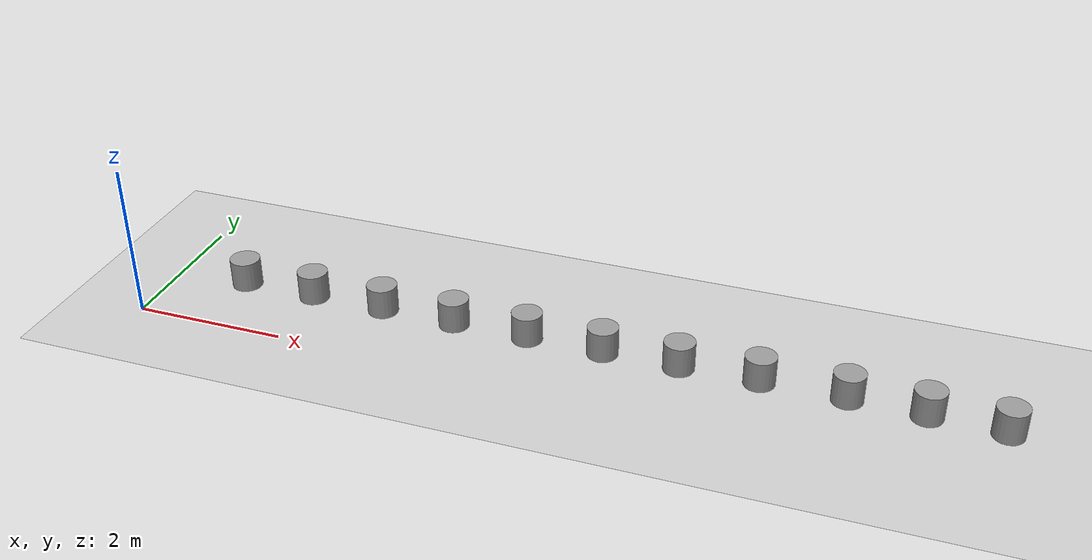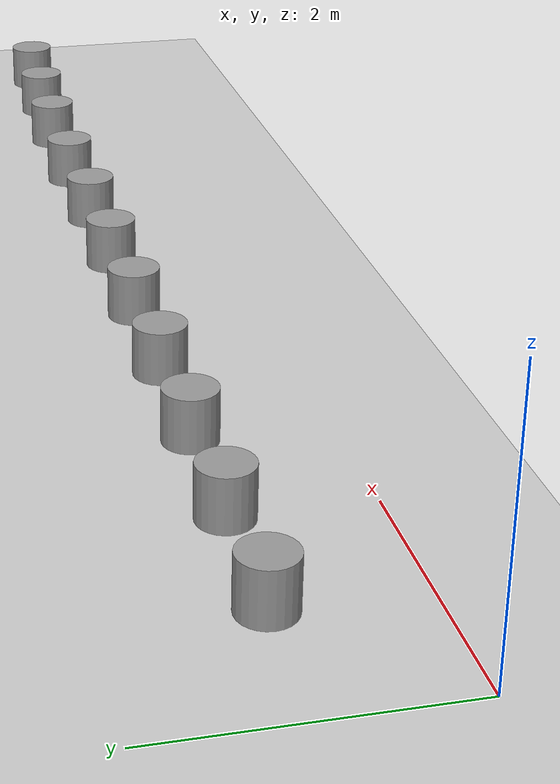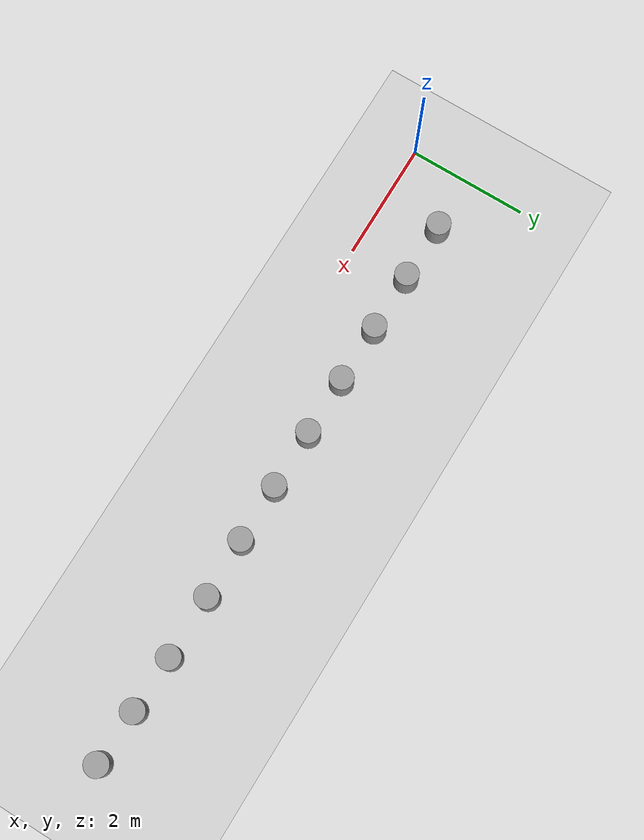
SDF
<sdf version="1.6">
 <world name="default">
  <light name="sun" type="directional">
   <pose>0 0 10 0 -0 0</pose>
   <diffuse>0.8 0.8 0.8 1</diffuse>
   <specular>0.2 0.2 0.2 1</specular>
   <attenuation>
    <range>1000</range>
    <constant>0.9</constant>
    <linear>0.01</linear>
    <quadratic>0.001</quadratic>
   </attenuation>
   <direction>-0.5 0.1 -0.9</direction>
  </light>
  <model name="ground_plane">
   <static>1</static>
   <link name="link">
    <collision name="collision">
     <geometry><plane><normal>0 0 1</normal><size>100 100</size></plane></geometry>
     <surface><friction><ode><mu>100</mu><mu2>50</mu2></ode></friction></surface>
    </collision>
    <visual name="visual">
     <cast_shadows>0</cast_shadows>
     <geometry><plane><normal>0 0 1</normal><size>100 100</size></plane></geometry>
     <material>
      <script><uri>file://media/materials/scripts/gazebo.material</uri><name>Gazebo/Grey</name></script>
     </material>
    </visual>
   </link>
  </model>
  <gravity>0 0 -9.8</gravity>
  <magnetic_field>6e-06 2.3e-05 -4.2e-05</magnetic_field>
  <atmosphere type="adiabatic"/>
  <physics name="default_physics" default="0" type="ode">
   <max_step_size>0.003</max_step_size>
   <real_time_factor>1</real_time_factor>
   <real_time_update_rate>2000</real_time_update_rate>
  </physics>
  <scene><ambient>0.4 0.4 0.4 1</ambient><background>0.7 0.7 0.7 1</background><shadows>1</shadows></scene>
  <audio><device>default</device></audio>
  <spherical_coordinates>
   <surface_model>EARTH_WGS84</surface_model>
   <latitude_deg>0</latitude_deg>
   <longitude_deg>0</longitude_deg>
   <elevation>0</elevation>
   <heading_deg>0</heading_deg>
  </spherical_coordinates>
  <model name="agent3">
   <link name="link_0">
    <inertial>
     <mass>1</mass>
     <inertia><ixx>0</ixx><ixy>0</ixy><ixz>0</ixz><iyy>0</iyy><iyz>0</iyz><izz>0</izz></inertia>
    </inertial>
    <visual name="visual">
     <geometry><cylinder><radius>0.2</radius><length>0.4</length></cylinder></geometry>
     <material>
      <lighting>1</lighting>
      <script><uri>file://media/materials/scripts/gazebo.material</uri><name>Gazebo/Grey</name></script>
     </material>
    </visual>
    <collision name="collision">
     <geometry><cylinder><radius>0.2</radius><length>0.4</length></cylinder></geometry>
     <surface>
      <friction>
       <ode><mu>0</mu><mu2>1</mu2><fdir1>0 0 0</fdir1><slip1>0</slip1><slip2>0</slip2></ode>
       <torsional>
        <coefficient>1</coefficient>
        <patch_radius>0</patch_radius>
        <surface_radius>0</surface_radius>
        <use_patch_radius>1</use_patch_radius>
        <ode><slip>0</slip></ode>
       </torsional>
      </friction>
      <bounce><restitution_coefficient>0</restitution_coefficient><threshold>1e+06</threshold></bounce>
      <contact>
       <collide_without_contact>0</collide_without_contact>
       <collide_without_contact_bitmask>1</collide_without_contact_bitmask>
       <collide_bitmask>1</collide_bitmask>
       <ode>
        <soft_cfm>0</soft_cfm>
        <soft_erp>0.2</soft_erp>
        <kp>1e+13</kp>
        <kd>1</kd>
        <max_vel>0.01</max_vel>
        <min_depth>0</min_depth>
       </ode>
       <bullet>
        <split_impulse>1</split_impulse>
        <split_impulse_penetration_threshold>-0.01</split_impulse_penetration_threshold>
        <soft_cfm>0</soft_cfm>
        <soft_erp>0.2</soft_erp>
        <kp>1e+13</kp>
        <kd>1</kd>
       </bullet>
      </contact>
     </surface>
    </collision>
   </link>
   <static>0</static>
   <plugin name="multi_obs" filename="libmulti_obs.so"/>
   <pose>3 1 0.19999 -0 -0 -0</pose>
  </model>
  <model name="agent2">
   <link name="link_0">
    <inertial>
     <mass>1</mass>
     <inertia><ixx>0</ixx><ixy>0</ixy><ixz>0</ixz><iyy>0</iyy><iyz>0</iyz><izz>0</izz></inertia>
    </inertial>
    <visual name="visual">
     <geometry><cylinder><radius>0.2</radius><length>0.4</length></cylinder></geometry>
     <material>
      <lighting>1</lighting>
      <script><uri>file://media/materials/scripts/gazebo.material</uri><name>Gazebo/Grey</name></script>
     </material>
    </visual>
    <collision name="collision">
     <geometry><cylinder><radius>0.2</radius><length>0.4</length></cylinder></geometry>
     <surface>
      <friction>
       <ode><mu>0</mu><mu2>1</mu2><fdir1>0 0 0</fdir1><slip1>0</slip1><slip2>0</slip2></ode>
       <torsional>
        <coefficient>1</coefficient>
        <patch_radius>0</patch_radius>
        <surface_radius>0</surface_radius>
        <use_patch_radius>1</use_patch_radius>
        <ode><slip>0</slip></ode>
       </torsional>
      </friction>
      <bounce><restitution_coefficient>0</restitution_coefficient><threshold>1e+06</threshold></bounce>
      <contact>
       <collide_without_contact>0</collide_without_contact>
       <collide_without_contact_bitmask>1</collide_without_contact_bitmask>
       <collide_bitmask>1</collide_bitmask>
       <ode>
        <soft_cfm>0</soft_cfm>
        <soft_erp>0.2</soft_erp>
        <kp>1e+13</kp>
        <kd>1</kd>
        <max_vel>0.01</max_vel>
        <min_depth>0</min_depth>
       </ode>
       <bullet>
        <split_impulse>1</split_impulse>
        <split_impulse_penetration_threshold>-0.01</split_impulse_penetration_threshold>
        <soft_cfm>0</soft_cfm>
        <soft_erp>0.2</soft_erp>
        <kp>1e+13</kp>
        <kd>1</kd>
       </bullet>
      </contact>
     </surface>
    </collision>
   </link>
   <static>0</static>
   <plugin name="multi_obs" filename="libmulti_obs.so"/>
   <pose>2 1 0.19999 -0 -0 -0</pose>
  </model>
  <model name="agent4">
   <link name="link_0">
    <inertial>
     <mass>1</mass>
     <inertia><ixx>0</ixx><ixy>0</ixy><ixz>0</ixz><iyy>0</iyy><iyz>0</iyz><izz>0</izz></inertia>
    </inertial>
    <visual name="visual">
     <geometry><cylinder><radius>0.2</radius><length>0.4</length></cylinder></geometry>
     <material>
      <lighting>1</lighting>
      <script><uri>file://media/materials/scripts/gazebo.material</uri><name>Gazebo/Grey</name></script>
     </material>
    </visual>
    <collision name="collision">
     <geometry><cylinder><radius>0.2</radius><length>0.4</length></cylinder></geometry>
     <surface>
      <friction>
       <ode><mu>0</mu><mu2>1</mu2><fdir1>0 0 0</fdir1><slip1>0</slip1><slip2>0</slip2></ode>
       <torsional>
        <coefficient>1</coefficient>
        <patch_radius>0</patch_radius>
        <surface_radius>0</surface_radius>
        <use_patch_radius>1</use_patch_radius>
        <ode><slip>0</slip></ode>
       </torsional>
      </friction>
      <bounce><restitution_coefficient>0</restitution_coefficient><threshold>1e+06</threshold></bounce>
      <contact>
       <collide_without_contact>0</collide_without_contact>
       <collide_without_contact_bitmask>1</collide_without_contact_bitmask>
       <collide_bitmask>1</collide_bitmask>
       <ode>
        <soft_cfm>0</soft_cfm>
        <soft_erp>0.2</soft_erp>
        <kp>1e+13</kp>
        <kd>1</kd>
        <max_vel>0.01</max_vel>
        <min_depth>0</min_depth>
       </ode>
       <bullet>
        <split_impulse>1</split_impulse>
        <split_impulse_penetration_threshold>-0.01</split_impulse_penetration_threshold>
        <soft_cfm>0</soft_cfm>
        <soft_erp>0.2</soft_erp>
        <kp>1e+13</kp>
        <kd>1</kd>
       </bullet>
      </contact>
     </surface>
    </collision>
   </link>
   <static>0</static>
   <plugin name="multi_obs" filename="libmulti_obs.so"/>
   <pose>4 1 0.19999 -0 -0 -0</pose>
  </model>
  <model name="agent1">
   <link name="link_0">
    <inertial>
     <mass>1</mass>
     <inertia><ixx>0</ixx><ixy>0</ixy><ixz>0</ixz><iyy>0</iyy><iyz>0</iyz><izz>0</izz></inertia>
    </inertial>
    <visual name="visual">
     <geometry><cylinder><radius>0.2</radius><length>0.4</length></cylinder></geometry>
     <material>
      <lighting>1</lighting>
      <script><uri>file://media/materials/scripts/gazebo.material</uri><name>Gazebo/Grey</name></script>
     </material>
    </visual>
    <collision name="collision">
     <geometry><cylinder><radius>0.2</radius><length>0.4</length></cylinder></geometry>
     <surface>
      <friction>
       <ode><mu>0</mu><mu2>1</mu2><fdir1>0 0 0</fdir1><slip1>0</slip1><slip2>0</slip2></ode>
       <torsional>
        <coefficient>1</coefficient>
        <patch_radius>0</patch_radius>
        <surface_radius>0</surface_radius>
        <use_patch_radius>1</use_patch_radius>
        <ode><slip>0</slip></ode>
       </torsional>
      </friction>
      <bounce><restitution_coefficient>0</restitution_coefficient><threshold>1e+06</threshold></bounce>
      <contact>
       <collide_without_contact>0</collide_without_contact>
       <collide_without_contact_bitmask>1</collide_without_contact_bitmask>
       <collide_bitmask>1</collide_bitmask>
       <ode>
        <soft_cfm>0</soft_cfm>
        <soft_erp>0.2</soft_erp>
        <kp>1e+13</kp>
        <kd>1</kd>
        <max_vel>0.01</max_vel>
        <min_depth>0</min_depth>
       </ode>
       <bullet>
        <split_impulse>1</split_impulse>
        <split_impulse_penetration_threshold>-0.01</split_impulse_penetration_threshold>
        <soft_cfm>0</soft_cfm>
        <soft_erp>0.2</soft_erp>
        <kp>1e+13</kp>
        <kd>1</kd>
       </bullet>
      </contact>
     </surface>
    </collision>
   </link>
   <static>0</static>
   <plugin name="multi_obs" filename="libmulti_obs.so"/>
   <pose>1 1 0.19999 -0 -0 -0</pose>
  </model>
  <model name="agent5">
   <link name="link_0">
    <inertial>
     <mass>1</mass>
     <inertia><ixx>0</ixx><ixy>0</ixy><ixz>0</ixz><iyy>0</iyy><iyz>0</iyz><izz>0</izz></inertia>
    </inertial>
    <visual name="visual">
     <geometry><cylinder><radius>0.2</radius><length>0.4</length></cylinder></geometry>
     <material>
      <lighting>1</lighting>
      <script><uri>file://media/materials/scripts/gazebo.material</uri><name>Gazebo/Grey</name></script>
     </material>
    </visual>
    <collision name="collision">
     <geometry><cylinder><radius>0.2</radius><length>0.4</length></cylinder></geometry>
     <surface>
      <friction>
       <ode><mu>0</mu><mu2>1</mu2><fdir1>0 0 0</fdir1><slip1>0</slip1><slip2>0</slip2></ode>
       <torsional>
        <coefficient>1</coefficient>
        <patch_radius>0</patch_radius>
        <surface_radius>0</surface_radius>
        <use_patch_radius>1</use_patch_radius>
        <ode><slip>0</slip></ode>
       </torsional>
      </friction>
      <bounce><restitution_coefficient>0</restitution_coefficient><threshold>1e+06</threshold></bounce>
      <contact>
       <collide_without_contact>0</collide_without_contact>
       <collide_without_contact_bitmask>1</collide_without_contact_bitmask>
       <collide_bitmask>1</collide_bitmask>
       <ode>
        <soft_cfm>0</soft_cfm>
        <soft_erp>0.2</soft_erp>
        <kp>1e+13</kp>
        <kd>1</kd>
        <max_vel>0.01</max_vel>
        <min_depth>0</min_depth>
       </ode>
       <bullet>
        <split_impulse>1</split_impulse>
        <split_impulse_penetration_threshold>-0.01</split_impulse_penetration_threshold>
        <soft_cfm>0</soft_cfm>
        <soft_erp>0.2</soft_erp>
        <kp>1e+13</kp>
        <kd>1</kd>
       </bullet>
      </contact>
     </surface>
    </collision>
   </link>
   <static>0</static>
   <plugin name="multi_obs" filename="libmulti_obs.so"/>
   <pose>5 1 0.19999 -0 -0 -0</pose>
  </model>
  <model name="agent6">
   <link name="link_0">
    <inertial>
     <mass>1</mass>
     <inertia><ixx>0</ixx><ixy>0</ixy><ixz>0</ixz><iyy>0</iyy><iyz>0</iyz><izz>0</izz></inertia>
    </inertial>
    <visual name="visual">
     <geometry><cylinder><radius>0.2</radius><length>0.4</length></cylinder></geometry>
     <material>
      <lighting>1</lighting>
      <script><uri>file://media/materials/scripts/gazebo.material</uri><name>Gazebo/Grey</name></script>
     </material>
    </visual>
    <collision name="collision">
     <geometry><cylinder><radius>0.2</radius><length>0.4</length></cylinder></geometry>
     <surface>
      <friction>
       <ode><mu>0</mu><mu2>1</mu2><fdir1>0 0 0</fdir1><slip1>0</slip1><slip2>0</slip2></ode>
       <torsional>
        <coefficient>1</coefficient>
        <patch_radius>0</patch_radius>
        <surface_radius>0</surface_radius>
        <use_patch_radius>1</use_patch_radius>
        <ode><slip>0</slip></ode>
       </torsional>
      </friction>
      <bounce><restitution_coefficient>0</restitution_coefficient><threshold>1e+06</threshold></bounce>
      <contact>
       <collide_without_contact>0</collide_without_contact>
       <collide_without_contact_bitmask>1</collide_without_contact_bitmask>
       <collide_bitmask>1</collide_bitmask>
       <ode>
        <soft_cfm>0</soft_cfm>
        <soft_erp>0.2</soft_erp>
        <kp>1e+13</kp>
        <kd>1</kd>
        <max_vel>0.01</max_vel>
        <min_depth>0</min_depth>
       </ode>
       <bullet>
        <split_impulse>1</split_impulse>
        <split_impulse_penetration_threshold>-0.01</split_impulse_penetration_threshold>
        <soft_cfm>0</soft_cfm>
        <soft_erp>0.2</soft_erp>
        <kp>1e+13</kp>
        <kd>1</kd>
       </bullet>
      </contact>
     </surface>
    </collision>
   </link>
   <static>0</static>
   <plugin name="multi_obs" filename="libmulti_obs.so"/>
   <pose>6 1 0.19999 -0 -0 -0</pose>
  </model>
  <model name="agent7">
   <link name="link_0">
    <inertial>
     <mass>1</mass>
     <inertia><ixx>0</ixx><ixy>0</ixy><ixz>0</ixz><iyy>0</iyy><iyz>0</iyz><izz>0</izz></inertia>
    </inertial>
    <visual name="visual">
     <geometry><cylinder><radius>0.2</radius><length>0.4</length></cylinder></geometry>
     <material>
      <lighting>1</lighting>
      <script><uri>file://media/materials/scripts/gazebo.material</uri><name>Gazebo/Grey</name></script>
     </material>
    </visual>
    <collision name="collision">
     <geometry><cylinder><radius>0.2</radius><length>0.4</length></cylinder></geometry>
     <surface>
      <friction>
       <ode><mu>0</mu><mu2>1</mu2><fdir1>0 0 0</fdir1><slip1>0</slip1><slip2>0</slip2></ode>
       <torsional>
        <coefficient>1</coefficient>
        <patch_radius>0</patch_radius>
        <surface_radius>0</surface_radius>
        <use_patch_radius>1</use_patch_radius>
        <ode><slip>0</slip></ode>
       </torsional>
      </friction>
      <bounce><restitution_coefficient>0</restitution_coefficient><threshold>1e+06</threshold></bounce>
      <contact>
       <collide_without_contact>0</collide_without_contact>
       <collide_without_contact_bitmask>1</collide_without_contact_bitmask>
       <collide_bitmask>1</collide_bitmask>
       <ode>
        <soft_cfm>0</soft_cfm>
        <soft_erp>0.2</soft_erp>
        <kp>1e+13</kp>
        <kd>1</kd>
        <max_vel>0.01</max_vel>
        <min_depth>0</min_depth>
       </ode>
       <bullet>
        <split_impulse>1</split_impulse>
        <split_impulse_penetration_threshold>-0.01</split_impulse_penetration_threshold>
        <soft_cfm>0</soft_cfm>
        <soft_erp>0.2</soft_erp>
        <kp>1e+13</kp>
        <kd>1</kd>
       </bullet>
      </contact>
     </surface>
    </collision>
   </link>
   <static>0</static>
   <plugin name="multi_obs" filename="libmulti_obs.so"/>
   <pose>6.97929 1.00485 0.19999 0 -0 0</pose>
  </model>
  <model name="agent8">
   <link name="link_0">
    <inertial>
     <mass>1</mass>
     <inertia><ixx>0</ixx><ixy>0</ixy><ixz>0</ixz><iyy>0</iyy><iyz>0</iyz><izz>0</izz></inertia>
    </inertial>
    <visual name="visual">
     <geometry><cylinder><radius>0.2</radius><length>0.4</length></cylinder></geometry>
     <material>
      <lighting>1</lighting>
      <script><uri>file://media/materials/scripts/gazebo.material</uri><name>Gazebo/Grey</name></script>
     </material>
    </visual>
    <collision name="collision">
     <geometry><cylinder><radius>0.2</radius><length>0.4</length></cylinder></geometry>
     <surface>
      <friction>
       <ode><mu>0</mu><mu2>1</mu2><fdir1>0 0 0</fdir1><slip1>0</slip1><slip2>0</slip2></ode>
       <torsional>
        <coefficient>1</coefficient>
        <patch_radius>0</patch_radius>
        <surface_radius>0</surface_radius>
        <use_patch_radius>1</use_patch_radius>
        <ode><slip>0</slip></ode>
       </torsional>
      </friction>
      <bounce><restitution_coefficient>0</restitution_coefficient><threshold>1e+06</threshold></bounce>
      <contact>
       <collide_without_contact>0</collide_without_contact>
       <collide_without_contact_bitmask>1</collide_without_contact_bitmask>
       <collide_bitmask>1</collide_bitmask>
       <ode>
        <soft_cfm>0</soft_cfm>
        <soft_erp>0.2</soft_erp>
        <kp>1e+13</kp>
        <kd>1</kd>
        <max_vel>0.01</max_vel>
        <min_depth>0</min_depth>
       </ode>
       <bullet>
        <split_impulse>1</split_impulse>
        <split_impulse_penetration_threshold>-0.01</split_impulse_penetration_threshold>
        <soft_cfm>0</soft_cfm>
        <soft_erp>0.2</soft_erp>
        <kp>1e+13</kp>
        <kd>1</kd>
       </bullet>
      </contact>
     </surface>
    </collision>
   </link>
   <static>0</static>
   <plugin name="multi_obs" filename="libmulti_obs.so"/>
   <pose>7.98009 1.03053 0.19999 0 -0 0</pose>
  </model>
  <model name="agent9">
   <link name="link_0">
    <inertial>
     <mass>1</mass>
     <inertia><ixx>0</ixx><ixy>0</ixy><ixz>0</ixz><iyy>0</iyy><iyz>0</iyz><izz>0</izz></inertia>
    </inertial>
    <visual name="visual">
     <geometry><cylinder><radius>0.2</radius><length>0.4</length></cylinder></geometry>
     <material>
      <lighting>1</lighting>
      <script><uri>file://media/materials/scripts/gazebo.material</uri><name>Gazebo/Grey</name></script>
     </material>
    </visual>
    <collision name="collision">
     <geometry><cylinder><radius>0.2</radius><length>0.4</length></cylinder></geometry>
     <surface>
      <friction>
       <ode><mu>0</mu><mu2>1</mu2><fdir1>0 0 0</fdir1><slip1>0</slip1><slip2>0</slip2></ode>
       <torsional>
        <coefficient>1</coefficient>
        <patch_radius>0</patch_radius>
        <surface_radius>0</surface_radius>
        <use_patch_radius>1</use_patch_radius>
        <ode><slip>0</slip></ode>
       </torsional>
      </friction>
      <bounce><restitution_coefficient>0</restitution_coefficient><threshold>1e+06</threshold></bounce>
      <contact>
       <collide_without_contact>0</collide_without_contact>
       <collide_without_contact_bitmask>1</collide_without_contact_bitmask>
       <collide_bitmask>1</collide_bitmask>
       <ode>
        <soft_cfm>0</soft_cfm>
        <soft_erp>0.2</soft_erp>
        <kp>1e+13</kp>
        <kd>1</kd>
        <max_vel>0.01</max_vel>
        <min_depth>0</min_depth>
       </ode>
       <bullet>
        <split_impulse>1</split_impulse>
        <split_impulse_penetration_threshold>-0.01</split_impulse_penetration_threshold>
        <soft_cfm>0</soft_cfm>
        <soft_erp>0.2</soft_erp>
        <kp>1e+13</kp>
        <kd>1</kd>
       </bullet>
      </contact>
     </surface>
    </collision>
   </link>
   <static>0</static>
   <plugin name="multi_obs" filename="libmulti_obs.so"/>
   <pose>9.04431 1.03292 0.19999 0 -0 0</pose>
  </model>
  <model name="agent10">
   <link name="link_0">
    <inertial>
     <mass>1</mass>
     <inertia><ixx>0</ixx><ixy>0</ixy><ixz>0</ixz><iyy>0</iyy><iyz>0</iyz><izz>0</izz></inertia>
    </inertial>
    <visual name="visual">
     <geometry><cylinder><radius>0.2</radius><length>0.4</length></cylinder></geometry>
     <material>
      <lighting>1</lighting>
      <script><uri>file://media/materials/scripts/gazebo.material</uri><name>Gazebo/Grey</name></script>
     </material>
    </visual>
    <collision name="collision">
     <geometry><cylinder><radius>0.2</radius><length>0.4</length></cylinder></geometry>
     <surface>
      <friction>
       <ode><mu>0</mu><mu2>1</mu2><fdir1>0 0 0</fdir1><slip1>0</slip1><slip2>0</slip2></ode>
       <torsional>
        <coefficient>1</coefficient>
        <patch_radius>0</patch_radius>
        <surface_radius>0</surface_radius>
        <use_patch_radius>1</use_patch_radius>
        <ode><slip>0</slip></ode>
       </torsional>
      </friction>
      <bounce><restitution_coefficient>0</restitution_coefficient><threshold>1e+06</threshold></bounce>
      <contact>
       <collide_without_contact>0</collide_without_contact>
       <collide_without_contact_bitmask>1</collide_without_contact_bitmask>
       <collide_bitmask>1</collide_bitmask>
       <ode>
        <soft_cfm>0</soft_cfm>
        <soft_erp>0.2</soft_erp>
        <kp>1e+13</kp>
        <kd>1</kd>
        <max_vel>0.01</max_vel>
        <min_depth>0</min_depth>
       </ode>
       <bullet>
        <split_impulse>1</split_impulse>
        <split_impulse_penetration_threshold>-0.01</split_impulse_penetration_threshold>
        <soft_cfm>0</soft_cfm>
        <soft_erp>0.2</soft_erp>
        <kp>1e+13</kp>
        <kd>1</kd>
       </bullet>
      </contact>
     </surface>
    </collision>
   </link>
   <static>0</static>
   <plugin name="multi_obs" filename="libmulti_obs.so"/>
   <pose>9.98695 1.00604 0.19999 0 -0 0</pose>
  </model>
  <model name="agent11">
   <link name="link_0">
    <inertial>
     <mass>1</mass>
     <inertia><ixx>0</ixx><ixy>0</ixy><ixz>0</ixz><iyy>0</iyy><iyz>0</iyz><izz>0</izz></inertia>
    </inertial>
    <visual name="visual">
     <geometry><cylinder><radius>0.2</radius><length>0.4</length></cylinder></geometry>
     <material>
      <lighting>1</lighting>
      <script><uri>file://media/materials/scripts/gazebo.material</uri><name>Gazebo/Grey</name></script>
     </material>
    </visual>
    <collision name="collision">
     <geometry><cylinder><radius>0.2</radius><length>0.4</length></cylinder></geometry>
     <surface>
      <friction>
       <ode><mu>0</mu><mu2>1</mu2><fdir1>0 0 0</fdir1><slip1>0</slip1><slip2>0</slip2></ode>
       <torsional>
        <coefficient>1</coefficient>
        <patch_radius>0</patch_radius>
        <surface_radius>0</surface_radius>
        <use_patch_radius>1</use_patch_radius>
        <ode><slip>0</slip></ode>
       </torsional>
      </friction>
      <bounce><restitution_coefficient>0</restitution_coefficient><threshold>1e+06</threshold></bounce>
      <contact>
       <collide_without_contact>0</collide_without_contact>
       <collide_without_contact_bitmask>1</collide_without_contact_bitmask>
       <collide_bitmask>1</collide_bitmask>
       <ode>
        <soft_cfm>0</soft_cfm>
        <soft_erp>0.2</soft_erp>
        <kp>1e+13</kp>
        <kd>1</kd>
        <max_vel>0.01</max_vel>
        <min_depth>0</min_depth>
       </ode>
       <bullet>
        <split_impulse>1</split_impulse>
        <split_impulse_penetration_threshold>-0.01</split_impulse_penetration_threshold>
        <soft_cfm>0</soft_cfm>
        <soft_erp>0.2</soft_erp>
        <kp>1e+13</kp>
        <kd>1</kd>
       </bullet>
      </contact>
     </surface>
    </collision>
   </link>
   <static>0</static>
   <plugin name="multi_obs" filename="libmulti_obs.so"/>
   <pose>10.9124 0.975435 0.19999 0 -0 0</pose>
  </model>
 </world>
</sdf>
